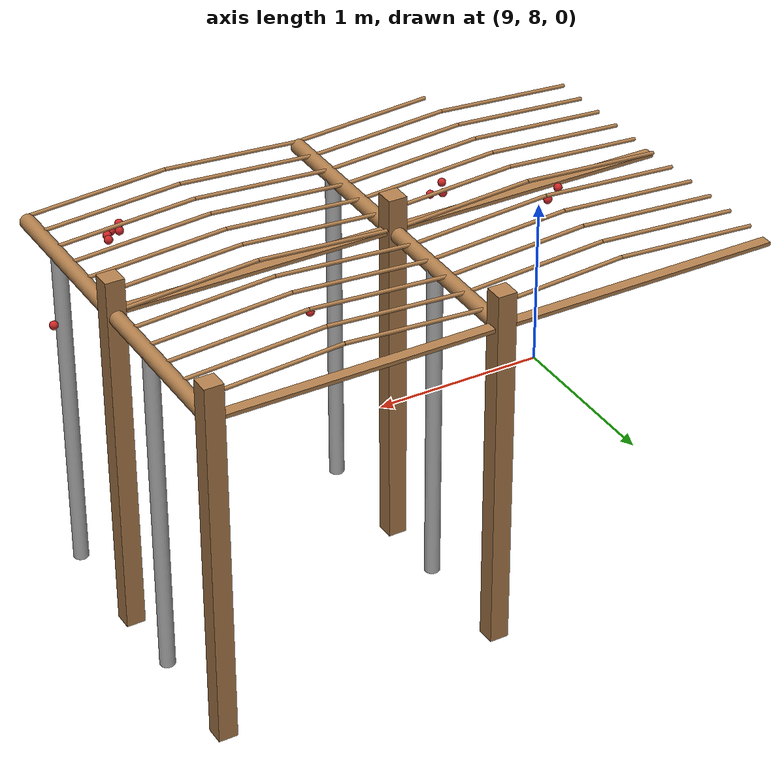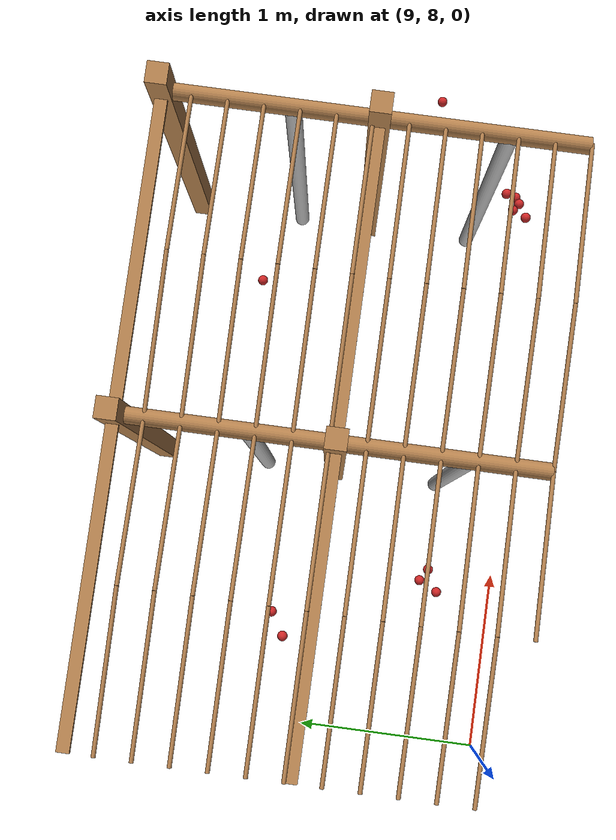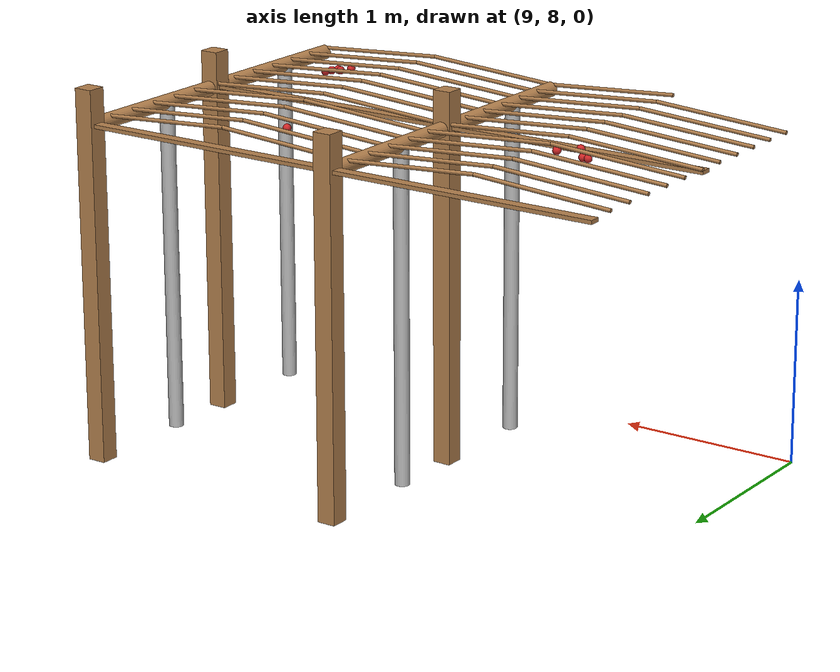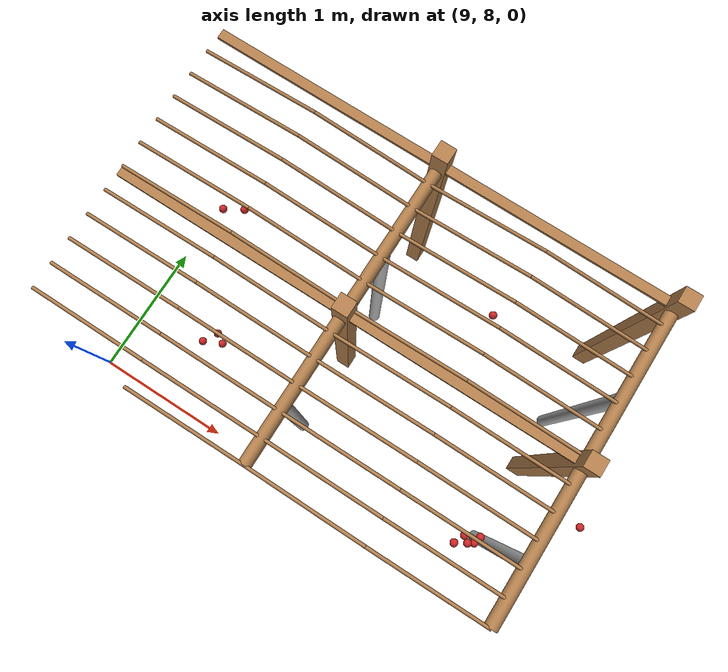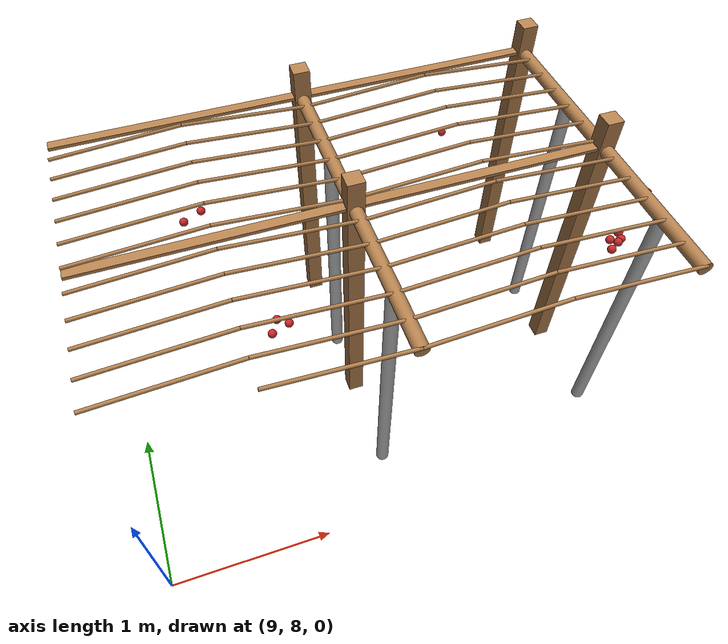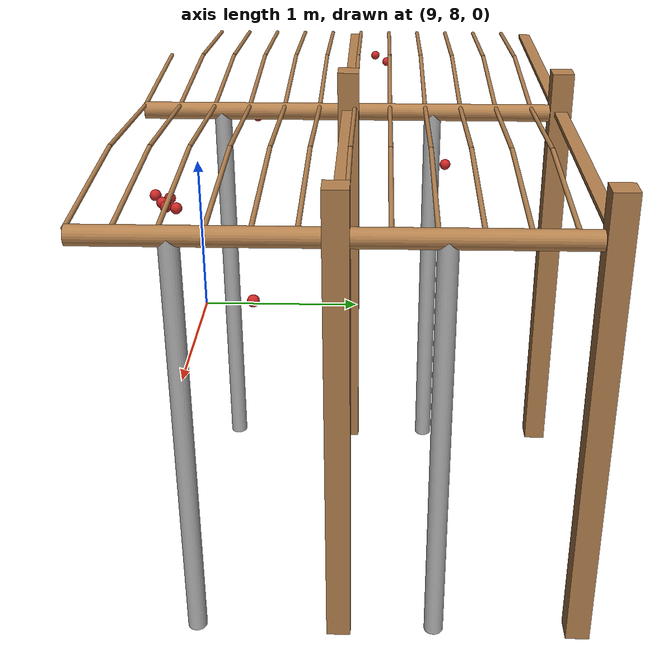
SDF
<sdf version="1.4">
 <model name="pergola">
  <include><name>post_86</name><pose>10.5 9.0 0 0 0 0</pose><uri>model://post</uri></include>
  <include><name>post_87</name><pose>10.5 10.0 0 0 0 0</pose><uri>model://post</uri></include>
  <include><name>post_97</name><pose>12.0 9.0 0 0 0 0</pose><uri>model://post</uri></include>
  <include><name>post_98</name><pose>12.0 10.0 0 0 0 0</pose><uri>model://post</uri></include>
  <link name="beam_75">
   <pose>9.75 9.0 1.81 0 0 0</pose>
   <collision name="collision"><geometry><box><size>1.5 0.06 0.02</size></box></geometry></collision>
   <visual name="visual">
    <geometry><box><size>1.5 0.06 0.02</size></box></geometry>
    <material><script><name>Gazebo/Wood</name></script></material>
   </visual>
   <inertial>
    <mass>5</mass>
    <inertia>
     <ixx>0.0016666666666666668</ixx>
     <ixy>0.0</ixy>
     <ixz>0.0</ixz>
     <iyy>0.9390000000000001</iyy>
     <iyz>0.0</iyz>
     <izz>0.9376666666666665</izz>
    </inertia>
   </inertial>
  </link>
  <link name="beam_76">
   <pose>9.75 10.0 1.81 0 0 0</pose>
   <collision name="collision"><geometry><box><size>1.5 0.06 0.02</size></box></geometry></collision>
   <visual name="visual">
    <geometry><box><size>1.5 0.06 0.02</size></box></geometry>
    <material><script><name>Gazebo/Wood</name></script></material>
   </visual>
   <inertial>
    <mass>5</mass>
    <inertia>
     <ixx>0.0016666666666666668</ixx>
     <ixy>0.0</ixy>
     <ixz>0.0</ixz>
     <iyy>0.9390000000000001</iyy>
     <iyz>0.0</iyz>
     <izz>0.9376666666666665</izz>
    </inertia>
   </inertial>
  </link>
  <link name="beam_86">
   <pose>11.25 9.0 1.81 0 0 0</pose>
   <collision name="collision"><geometry><box><size>1.5 0.06 0.02</size></box></geometry></collision>
   <visual name="visual">
    <geometry><box><size>1.5 0.06 0.02</size></box></geometry>
    <material><script><name>Gazebo/Wood</name></script></material>
   </visual>
   <inertial>
    <mass>5</mass>
    <inertia>
     <ixx>0.0016666666666666668</ixx>
     <ixy>0.0</ixy>
     <ixz>0.0</ixz>
     <iyy>0.9390000000000001</iyy>
     <iyz>0.0</iyz>
     <izz>0.9376666666666665</izz>
    </inertia>
   </inertial>
  </link>
  <link name="beam_87">
   <pose>11.25 10.0 1.81 0 0 0</pose>
   <collision name="collision"><geometry><box><size>1.5 0.06 0.02</size></box></geometry></collision>
   <visual name="visual">
    <geometry><box><size>1.5 0.06 0.02</size></box></geometry>
    <material><script><name>Gazebo/Wood</name></script></material>
   </visual>
   <inertial>
    <mass>5</mass>
    <inertia>
     <ixx>0.0016666666666666668</ixx>
     <ixy>0.0</ixy>
     <ixz>0.0</ixz>
     <iyy>0.9390000000000001</iyy>
     <iyz>0.0</iyz>
     <izz>0.9376666666666665</izz>
    </inertia>
   </inertial>
  </link>
  <include><name>tree_78</name><pose>10.5 8.4 0 0 0 0</pose><uri>model://tree_trunk</uri></include>
  <include><name>tree_79</name><pose>10.5 9.4 0 0 0 0</pose><uri>model://tree_trunk</uri></include>
  <include><name>tree_88</name><pose>12.0 8.4 0 0 0 0</pose><uri>model://tree_trunk</uri></include>
  <include><name>tree_89</name><pose>12.0 9.4 0 0 0 0</pose><uri>model://tree_trunk</uri></include>
  <link name="baseBranch_78">
   <pose>10.5 8.5 1.8 1.5707963267948966 0 0</pose>
   <collision name="collision">
    <geometry><cylinder><radius>0.04</radius><length>0.94</length></cylinder></geometry>
   </collision>
   <visual name="visual">
    <geometry><cylinder><radius>0.04</radius><length>0.94</length></cylinder></geometry>
    <material><script><name>Gazebo/WoodFloor</name></script></material>
   </visual>
   <inertial>
    <mass>10</mass>
    <inertia>
     <ixx>0.7403333333333334</ixx>
     <ixy>0.0</ixy>
     <ixz>0.0</ixz>
     <iyy>0.7403333333333334</iyy>
     <iyz>0.0</iyz>
     <izz>0.008</izz>
    </inertia>
   </inertial>
  </link>
  <link name="baseBranch_79">
   <pose>10.5 9.5 1.8 1.5707963267948966 0 0</pose>
   <collision name="collision">
    <geometry><cylinder><radius>0.04</radius><length>0.94</length></cylinder></geometry>
   </collision>
   <visual name="visual">
    <geometry><cylinder><radius>0.04</radius><length>0.94</length></cylinder></geometry>
    <material><script><name>Gazebo/WoodFloor</name></script></material>
   </visual>
   <inertial>
    <mass>10</mass>
    <inertia>
     <ixx>0.7403333333333334</ixx>
     <ixy>0.0</ixy>
     <ixz>0.0</ixz>
     <iyy>0.7403333333333334</iyy>
     <iyz>0.0</iyz>
     <izz>0.008</izz>
    </inertia>
   </inertial>
  </link>
  <link name="baseBranch_88">
   <pose>12.0 8.5 1.8 1.5707963267948966 0 0</pose>
   <collision name="collision">
    <geometry><cylinder><radius>0.04</radius><length>0.94</length></cylinder></geometry>
   </collision>
   <visual name="visual">
    <geometry><cylinder><radius>0.04</radius><length>0.94</length></cylinder></geometry>
    <material><script><name>Gazebo/WoodFloor</name></script></material>
   </visual>
   <inertial>
    <mass>10</mass>
    <inertia>
     <ixx>0.7403333333333334</ixx>
     <ixy>0.0</ixy>
     <ixz>0.0</ixz>
     <iyy>0.7403333333333334</iyy>
     <iyz>0.0</iyz>
     <izz>0.008</izz>
    </inertia>
   </inertial>
  </link>
  <link name="baseBranch_89">
   <pose>12.0 9.5 1.8 1.5707963267948966 0 0</pose>
   <collision name="collision">
    <geometry><cylinder><radius>0.04</radius><length>0.94</length></cylinder></geometry>
   </collision>
   <visual name="visual">
    <geometry><cylinder><radius>0.04</radius><length>0.94</length></cylinder></geometry>
    <material><script><name>Gazebo/WoodFloor</name></script></material>
   </visual>
   <inertial>
    <mass>10</mass>
    <inertia>
     <ixx>0.7403333333333334</ixx>
     <ixy>0.0</ixy>
     <ixz>0.0</ixz>
     <iyy>0.7403333333333334</iyy>
     <iyz>0.0</iyz>
     <izz>0.008</izz>
    </inertia>
   </inertial>
  </link>
  <link name="vine_817">
   <pose>10.125 8.03 1.85 0 -1.5042281630190728 0</pose>
   <collision name="collision">
    <geometry><cylinder><radius>0.01</radius><length>0.7516648189186453</length></cylinder></geometry>
   </collision>
   <visual name="visual">
    <geometry><cylinder><radius>0.01</radius><length>0.7516648189186453</length></cylinder></geometry>
    <material><script><name>Gazebo/WoodFloor</name></script></material>
   </visual>
   <inertial>
    <mass>5</mass>
    <inertia>
     <ixx>0.23554166666666657</ixx>
     <ixy>0.0</ixy>
     <ixz>0.0</ixz>
     <iyy>0.23554166666666657</iyy>
     <iyz>0.0</iyz>
     <izz>0.00025</izz>
    </inertia>
   </inertial>
  </link>
  <link name="vine_818">
   <pose>9.375 8.196666666666665 1.85 0 1.5042281630190728 0</pose>
   <collision name="collision">
    <geometry><cylinder><radius>0.01</radius><length>0.7516648189186453</length></cylinder></geometry>
   </collision>
   <visual name="visual">
    <geometry><cylinder><radius>0.01</radius><length>0.7516648189186453</length></cylinder></geometry>
    <material><script><name>Gazebo/WoodFloor</name></script></material>
   </visual>
   <inertial>
    <mass>5</mass>
    <inertia>
     <ixx>0.23554166666666657</ixx>
     <ixy>0.0</ixy>
     <ixz>0.0</ixz>
     <iyy>0.23554166666666657</iyy>
     <iyz>0.0</iyz>
     <izz>0.00025</izz>
    </inertia>
   </inertial>
  </link>
  <link name="vine_819">
   <pose>10.125 8.196666666666665 1.85 0 -1.5042281630190728 0</pose>
   <collision name="collision">
    <geometry><cylinder><radius>0.01</radius><length>0.7516648189186453</length></cylinder></geometry>
   </collision>
   <visual name="visual">
    <geometry><cylinder><radius>0.01</radius><length>0.7516648189186453</length></cylinder></geometry>
    <material><script><name>Gazebo/WoodFloor</name></script></material>
   </visual>
   <inertial>
    <mass>5</mass>
    <inertia>
     <ixx>0.23554166666666657</ixx>
     <ixy>0.0</ixy>
     <ixz>0.0</ixz>
     <iyy>0.23554166666666657</iyy>
     <iyz>0.0</iyz>
     <izz>0.00025</izz>
    </inertia>
   </inertial>
  </link>
  <link name="vine_820">
   <pose>9.375 8.363333333333332 1.85 0 1.5042281630190728 0</pose>
   <collision name="collision">
    <geometry><cylinder><radius>0.01</radius><length>0.7516648189186453</length></cylinder></geometry>
   </collision>
   <visual name="visual">
    <geometry><cylinder><radius>0.01</radius><length>0.7516648189186453</length></cylinder></geometry>
    <material><script><name>Gazebo/WoodFloor</name></script></material>
   </visual>
   <inertial>
    <mass>5</mass>
    <inertia>
     <ixx>0.23554166666666657</ixx>
     <ixy>0.0</ixy>
     <ixz>0.0</ixz>
     <iyy>0.23554166666666657</iyy>
     <iyz>0.0</iyz>
     <izz>0.00025</izz>
    </inertia>
   </inertial>
  </link>
  <link name="vine_821">
   <pose>10.125 8.363333333333332 1.85 0 -1.5042281630190728 0</pose>
   <collision name="collision">
    <geometry><cylinder><radius>0.01</radius><length>0.7516648189186453</length></cylinder></geometry>
   </collision>
   <visual name="visual">
    <geometry><cylinder><radius>0.01</radius><length>0.7516648189186453</length></cylinder></geometry>
    <material><script><name>Gazebo/WoodFloor</name></script></material>
   </visual>
   <inertial>
    <mass>5</mass>
    <inertia>
     <ixx>0.23554166666666657</ixx>
     <ixy>0.0</ixy>
     <ixz>0.0</ixz>
     <iyy>0.23554166666666657</iyy>
     <iyz>0.0</iyz>
     <izz>0.00025</izz>
    </inertia>
   </inertial>
  </link>
  <link name="vine_822">
   <pose>9.375 8.53 1.85 0 1.5042281630190728 0</pose>
   <collision name="collision">
    <geometry><cylinder><radius>0.01</radius><length>0.7516648189186453</length></cylinder></geometry>
   </collision>
   <visual name="visual">
    <geometry><cylinder><radius>0.01</radius><length>0.7516648189186453</length></cylinder></geometry>
    <material><script><name>Gazebo/WoodFloor</name></script></material>
   </visual>
   <inertial>
    <mass>5</mass>
    <inertia>
     <ixx>0.23554166666666657</ixx>
     <ixy>0.0</ixy>
     <ixz>0.0</ixz>
     <iyy>0.23554166666666657</iyy>
     <iyz>0.0</iyz>
     <izz>0.00025</izz>
    </inertia>
   </inertial>
  </link>
  <link name="vine_823">
   <pose>10.125 8.53 1.85 0 -1.5042281630190728 0</pose>
   <collision name="collision">
    <geometry><cylinder><radius>0.01</radius><length>0.7516648189186453</length></cylinder></geometry>
   </collision>
   <visual name="visual">
    <geometry><cylinder><radius>0.01</radius><length>0.7516648189186453</length></cylinder></geometry>
    <material><script><name>Gazebo/WoodFloor</name></script></material>
   </visual>
   <inertial>
    <mass>5</mass>
    <inertia>
     <ixx>0.23554166666666657</ixx>
     <ixy>0.0</ixy>
     <ixz>0.0</ixz>
     <iyy>0.23554166666666657</iyy>
     <iyz>0.0</iyz>
     <izz>0.00025</izz>
    </inertia>
   </inertial>
  </link>
  <link name="vine_824">
   <pose>9.375 8.696666666666665 1.85 0 1.5042281630190728 0</pose>
   <collision name="collision">
    <geometry><cylinder><radius>0.01</radius><length>0.7516648189186453</length></cylinder></geometry>
   </collision>
   <visual name="visual">
    <geometry><cylinder><radius>0.01</radius><length>0.7516648189186453</length></cylinder></geometry>
    <material><script><name>Gazebo/WoodFloor</name></script></material>
   </visual>
   <inertial>
    <mass>5</mass>
    <inertia>
     <ixx>0.23554166666666657</ixx>
     <ixy>0.0</ixy>
     <ixz>0.0</ixz>
     <iyy>0.23554166666666657</iyy>
     <iyz>0.0</iyz>
     <izz>0.00025</izz>
    </inertia>
   </inertial>
  </link>
  <link name="vine_825">
   <pose>10.125 8.696666666666665 1.85 0 -1.5042281630190728 0</pose>
   <collision name="collision">
    <geometry><cylinder><radius>0.01</radius><length>0.7516648189186453</length></cylinder></geometry>
   </collision>
   <visual name="visual">
    <geometry><cylinder><radius>0.01</radius><length>0.7516648189186453</length></cylinder></geometry>
    <material><script><name>Gazebo/WoodFloor</name></script></material>
   </visual>
   <inertial>
    <mass>5</mass>
    <inertia>
     <ixx>0.23554166666666657</ixx>
     <ixy>0.0</ixy>
     <ixz>0.0</ixz>
     <iyy>0.23554166666666657</iyy>
     <iyz>0.0</iyz>
     <izz>0.00025</izz>
    </inertia>
   </inertial>
  </link>
  <link name="vine_826">
   <pose>9.375 8.863333333333332 1.85 0 1.5042281630190728 0</pose>
   <collision name="collision">
    <geometry><cylinder><radius>0.01</radius><length>0.7516648189186453</length></cylinder></geometry>
   </collision>
   <visual name="visual">
    <geometry><cylinder><radius>0.01</radius><length>0.7516648189186453</length></cylinder></geometry>
    <material><script><name>Gazebo/WoodFloor</name></script></material>
   </visual>
   <inertial>
    <mass>5</mass>
    <inertia>
     <ixx>0.23554166666666657</ixx>
     <ixy>0.0</ixy>
     <ixz>0.0</ixz>
     <iyy>0.23554166666666657</iyy>
     <iyz>0.0</iyz>
     <izz>0.00025</izz>
    </inertia>
   </inertial>
  </link>
  <link name="vine_827">
   <pose>10.125 8.863333333333332 1.85 0 -1.5042281630190728 0</pose>
   <collision name="collision">
    <geometry><cylinder><radius>0.01</radius><length>0.7516648189186453</length></cylinder></geometry>
   </collision>
   <visual name="visual">
    <geometry><cylinder><radius>0.01</radius><length>0.7516648189186453</length></cylinder></geometry>
    <material><script><name>Gazebo/WoodFloor</name></script></material>
   </visual>
   <inertial>
    <mass>5</mass>
    <inertia>
     <ixx>0.23554166666666657</ixx>
     <ixy>0.0</ixy>
     <ixz>0.0</ixz>
     <iyy>0.23554166666666657</iyy>
     <iyz>0.0</iyz>
     <izz>0.00025</izz>
    </inertia>
   </inertial>
  </link>
  <link name="vine_828">
   <pose>9.375 9.03 1.85 0 1.5042281630190728 0</pose>
   <collision name="collision">
    <geometry><cylinder><radius>0.01</radius><length>0.7516648189186453</length></cylinder></geometry>
   </collision>
   <visual name="visual">
    <geometry><cylinder><radius>0.01</radius><length>0.7516648189186453</length></cylinder></geometry>
    <material><script><name>Gazebo/WoodFloor</name></script></material>
   </visual>
   <inertial>
    <mass>5</mass>
    <inertia>
     <ixx>0.23554166666666657</ixx>
     <ixy>0.0</ixy>
     <ixz>0.0</ixz>
     <iyy>0.23554166666666657</iyy>
     <iyz>0.0</iyz>
     <izz>0.00025</izz>
    </inertia>
   </inertial>
  </link>
  <link name="vine_829">
   <pose>10.125 9.03 1.85 0 -1.5042281630190728 0</pose>
   <collision name="collision">
    <geometry><cylinder><radius>0.01</radius><length>0.7516648189186453</length></cylinder></geometry>
   </collision>
   <visual name="visual">
    <geometry><cylinder><radius>0.01</radius><length>0.7516648189186453</length></cylinder></geometry>
    <material><script><name>Gazebo/WoodFloor</name></script></material>
   </visual>
   <inertial>
    <mass>5</mass>
    <inertia>
     <ixx>0.23554166666666657</ixx>
     <ixy>0.0</ixy>
     <ixz>0.0</ixz>
     <iyy>0.23554166666666657</iyy>
     <iyz>0.0</iyz>
     <izz>0.00025</izz>
    </inertia>
   </inertial>
  </link>
  <link name="vine_830">
   <pose>9.375 9.196666666666665 1.85 0 1.5042281630190728 0</pose>
   <collision name="collision">
    <geometry><cylinder><radius>0.01</radius><length>0.7516648189186453</length></cylinder></geometry>
   </collision>
   <visual name="visual">
    <geometry><cylinder><radius>0.01</radius><length>0.7516648189186453</length></cylinder></geometry>
    <material><script><name>Gazebo/WoodFloor</name></script></material>
   </visual>
   <inertial>
    <mass>5</mass>
    <inertia>
     <ixx>0.23554166666666657</ixx>
     <ixy>0.0</ixy>
     <ixz>0.0</ixz>
     <iyy>0.23554166666666657</iyy>
     <iyz>0.0</iyz>
     <izz>0.00025</izz>
    </inertia>
   </inertial>
  </link>
  <link name="vine_831">
   <pose>10.125 9.196666666666665 1.85 0 -1.5042281630190728 0</pose>
   <collision name="collision">
    <geometry><cylinder><radius>0.01</radius><length>0.7516648189186453</length></cylinder></geometry>
   </collision>
   <visual name="visual">
    <geometry><cylinder><radius>0.01</radius><length>0.7516648189186453</length></cylinder></geometry>
    <material><script><name>Gazebo/WoodFloor</name></script></material>
   </visual>
   <inertial>
    <mass>5</mass>
    <inertia>
     <ixx>0.23554166666666657</ixx>
     <ixy>0.0</ixy>
     <ixz>0.0</ixz>
     <iyy>0.23554166666666657</iyy>
     <iyz>0.0</iyz>
     <izz>0.00025</izz>
    </inertia>
   </inertial>
  </link>
  <link name="vine_832">
   <pose>9.375 9.363333333333332 1.85 0 1.5042281630190728 0</pose>
   <collision name="collision">
    <geometry><cylinder><radius>0.01</radius><length>0.7516648189186453</length></cylinder></geometry>
   </collision>
   <visual name="visual">
    <geometry><cylinder><radius>0.01</radius><length>0.7516648189186453</length></cylinder></geometry>
    <material><script><name>Gazebo/WoodFloor</name></script></material>
   </visual>
   <inertial>
    <mass>5</mass>
    <inertia>
     <ixx>0.23554166666666657</ixx>
     <ixy>0.0</ixy>
     <ixz>0.0</ixz>
     <iyy>0.23554166666666657</iyy>
     <iyz>0.0</iyz>
     <izz>0.00025</izz>
    </inertia>
   </inertial>
  </link>
  <link name="vine_833">
   <pose>10.125 9.363333333333332 1.85 0 -1.5042281630190728 0</pose>
   <collision name="collision">
    <geometry><cylinder><radius>0.01</radius><length>0.7516648189186453</length></cylinder></geometry>
   </collision>
   <visual name="visual">
    <geometry><cylinder><radius>0.01</radius><length>0.7516648189186453</length></cylinder></geometry>
    <material><script><name>Gazebo/WoodFloor</name></script></material>
   </visual>
   <inertial>
    <mass>5</mass>
    <inertia>
     <ixx>0.23554166666666657</ixx>
     <ixy>0.0</ixy>
     <ixz>0.0</ixz>
     <iyy>0.23554166666666657</iyy>
     <iyz>0.0</iyz>
     <izz>0.00025</izz>
    </inertia>
   </inertial>
  </link>
  <link name="vine_834">
   <pose>9.375 9.53 1.85 0 1.5042281630190728 0</pose>
   <collision name="collision">
    <geometry><cylinder><radius>0.01</radius><length>0.7516648189186453</length></cylinder></geometry>
   </collision>
   <visual name="visual">
    <geometry><cylinder><radius>0.01</radius><length>0.7516648189186453</length></cylinder></geometry>
    <material><script><name>Gazebo/WoodFloor</name></script></material>
   </visual>
   <inertial>
    <mass>5</mass>
    <inertia>
     <ixx>0.23554166666666657</ixx>
     <ixy>0.0</ixy>
     <ixz>0.0</ixz>
     <iyy>0.23554166666666657</iyy>
     <iyz>0.0</iyz>
     <izz>0.00025</izz>
    </inertia>
   </inertial>
  </link>
  <link name="vine_835">
   <pose>10.125 9.53 1.85 0 -1.5042281630190728 0</pose>
   <collision name="collision">
    <geometry><cylinder><radius>0.01</radius><length>0.7516648189186453</length></cylinder></geometry>
   </collision>
   <visual name="visual">
    <geometry><cylinder><radius>0.01</radius><length>0.7516648189186453</length></cylinder></geometry>
    <material><script><name>Gazebo/WoodFloor</name></script></material>
   </visual>
   <inertial>
    <mass>5</mass>
    <inertia>
     <ixx>0.23554166666666657</ixx>
     <ixy>0.0</ixy>
     <ixz>0.0</ixz>
     <iyy>0.23554166666666657</iyy>
     <iyz>0.0</iyz>
     <izz>0.00025</izz>
    </inertia>
   </inertial>
  </link>
  <link name="vine_836">
   <pose>9.375 9.696666666666665 1.85 0 1.5042281630190728 0</pose>
   <collision name="collision">
    <geometry><cylinder><radius>0.01</radius><length>0.7516648189186453</length></cylinder></geometry>
   </collision>
   <visual name="visual">
    <geometry><cylinder><radius>0.01</radius><length>0.7516648189186453</length></cylinder></geometry>
    <material><script><name>Gazebo/WoodFloor</name></script></material>
   </visual>
   <inertial>
    <mass>5</mass>
    <inertia>
     <ixx>0.23554166666666657</ixx>
     <ixy>0.0</ixy>
     <ixz>0.0</ixz>
     <iyy>0.23554166666666657</iyy>
     <iyz>0.0</iyz>
     <izz>0.00025</izz>
    </inertia>
   </inertial>
  </link>
  <link name="vine_837">
   <pose>10.125 9.696666666666665 1.85 0 -1.5042281630190728 0</pose>
   <collision name="collision">
    <geometry><cylinder><radius>0.01</radius><length>0.7516648189186453</length></cylinder></geometry>
   </collision>
   <visual name="visual">
    <geometry><cylinder><radius>0.01</radius><length>0.7516648189186453</length></cylinder></geometry>
    <material><script><name>Gazebo/WoodFloor</name></script></material>
   </visual>
   <inertial>
    <mass>5</mass>
    <inertia>
     <ixx>0.23554166666666657</ixx>
     <ixy>0.0</ixy>
     <ixz>0.0</ixz>
     <iyy>0.23554166666666657</iyy>
     <iyz>0.0</iyz>
     <izz>0.00025</izz>
    </inertia>
   </inertial>
  </link>
  <link name="vine_838">
   <pose>9.375 9.863333333333332 1.85 0 1.5042281630190728 0</pose>
   <collision name="collision">
    <geometry><cylinder><radius>0.01</radius><length>0.7516648189186453</length></cylinder></geometry>
   </collision>
   <visual name="visual">
    <geometry><cylinder><radius>0.01</radius><length>0.7516648189186453</length></cylinder></geometry>
    <material><script><name>Gazebo/WoodFloor</name></script></material>
   </visual>
   <inertial>
    <mass>5</mass>
    <inertia>
     <ixx>0.23554166666666657</ixx>
     <ixy>0.0</ixy>
     <ixz>0.0</ixz>
     <iyy>0.23554166666666657</iyy>
     <iyz>0.0</iyz>
     <izz>0.00025</izz>
    </inertia>
   </inertial>
  </link>
  <link name="vine_839">
   <pose>10.125 9.863333333333332 1.85 0 -1.5042281630190728 0</pose>
   <collision name="collision">
    <geometry><cylinder><radius>0.01</radius><length>0.7516648189186453</length></cylinder></geometry>
   </collision>
   <visual name="visual">
    <geometry><cylinder><radius>0.01</radius><length>0.7516648189186453</length></cylinder></geometry>
    <material><script><name>Gazebo/WoodFloor</name></script></material>
   </visual>
   <inertial>
    <mass>5</mass>
    <inertia>
     <ixx>0.23554166666666657</ixx>
     <ixy>0.0</ixy>
     <ixz>0.0</ixz>
     <iyy>0.23554166666666657</iyy>
     <iyz>0.0</iyz>
     <izz>0.00025</izz>
    </inertia>
   </inertial>
  </link>
  <link name="vine_936">
   <pose>10.875 8.03 1.85 0 1.5042281630190728 0</pose>
   <collision name="collision">
    <geometry><cylinder><radius>0.01</radius><length>0.7516648189186453</length></cylinder></geometry>
   </collision>
   <visual name="visual">
    <geometry><cylinder><radius>0.01</radius><length>0.7516648189186453</length></cylinder></geometry>
    <material><script><name>Gazebo/WoodFloor</name></script></material>
   </visual>
   <inertial>
    <mass>5</mass>
    <inertia>
     <ixx>0.23554166666666657</ixx>
     <ixy>0.0</ixy>
     <ixz>0.0</ixz>
     <iyy>0.23554166666666657</iyy>
     <iyz>0.0</iyz>
     <izz>0.00025</izz>
    </inertia>
   </inertial>
  </link>
  <link name="vine_937">
   <pose>11.625 8.03 1.85 0 -1.5042281630190728 0</pose>
   <collision name="collision">
    <geometry><cylinder><radius>0.01</radius><length>0.7516648189186453</length></cylinder></geometry>
   </collision>
   <visual name="visual">
    <geometry><cylinder><radius>0.01</radius><length>0.7516648189186453</length></cylinder></geometry>
    <material><script><name>Gazebo/WoodFloor</name></script></material>
   </visual>
   <inertial>
    <mass>5</mass>
    <inertia>
     <ixx>0.23554166666666657</ixx>
     <ixy>0.0</ixy>
     <ixz>0.0</ixz>
     <iyy>0.23554166666666657</iyy>
     <iyz>0.0</iyz>
     <izz>0.00025</izz>
    </inertia>
   </inertial>
  </link>
  <link name="vine_938">
   <pose>10.875 8.196666666666665 1.85 0 1.5042281630190728 0</pose>
   <collision name="collision">
    <geometry><cylinder><radius>0.01</radius><length>0.7516648189186453</length></cylinder></geometry>
   </collision>
   <visual name="visual">
    <geometry><cylinder><radius>0.01</radius><length>0.7516648189186453</length></cylinder></geometry>
    <material><script><name>Gazebo/WoodFloor</name></script></material>
   </visual>
   <inertial>
    <mass>5</mass>
    <inertia>
     <ixx>0.23554166666666657</ixx>
     <ixy>0.0</ixy>
     <ixz>0.0</ixz>
     <iyy>0.23554166666666657</iyy>
     <iyz>0.0</iyz>
     <izz>0.00025</izz>
    </inertia>
   </inertial>
  </link>
  <link name="vine_939">
   <pose>11.625 8.196666666666665 1.85 0 -1.5042281630190728 0</pose>
   <collision name="collision">
    <geometry><cylinder><radius>0.01</radius><length>0.7516648189186453</length></cylinder></geometry>
   </collision>
   <visual name="visual">
    <geometry><cylinder><radius>0.01</radius><length>0.7516648189186453</length></cylinder></geometry>
    <material><script><name>Gazebo/WoodFloor</name></script></material>
   </visual>
   <inertial>
    <mass>5</mass>
    <inertia>
     <ixx>0.23554166666666657</ixx>
     <ixy>0.0</ixy>
     <ixz>0.0</ixz>
     <iyy>0.23554166666666657</iyy>
     <iyz>0.0</iyz>
     <izz>0.00025</izz>
    </inertia>
   </inertial>
  </link>
  <link name="vine_940">
   <pose>10.875 8.363333333333332 1.85 0 1.5042281630190728 0</pose>
   <collision name="collision">
    <geometry><cylinder><radius>0.01</radius><length>0.7516648189186453</length></cylinder></geometry>
   </collision>
   <visual name="visual">
    <geometry><cylinder><radius>0.01</radius><length>0.7516648189186453</length></cylinder></geometry>
    <material><script><name>Gazebo/WoodFloor</name></script></material>
   </visual>
   <inertial>
    <mass>5</mass>
    <inertia>
     <ixx>0.23554166666666657</ixx>
     <ixy>0.0</ixy>
     <ixz>0.0</ixz>
     <iyy>0.23554166666666657</iyy>
     <iyz>0.0</iyz>
     <izz>0.00025</izz>
    </inertia>
   </inertial>
  </link>
  <link name="vine_941">
   <pose>11.625 8.363333333333332 1.85 0 -1.5042281630190728 0</pose>
   <collision name="collision">
    <geometry><cylinder><radius>0.01</radius><length>0.7516648189186453</length></cylinder></geometry>
   </collision>
   <visual name="visual">
    <geometry><cylinder><radius>0.01</radius><length>0.7516648189186453</length></cylinder></geometry>
    <material><script><name>Gazebo/WoodFloor</name></script></material>
   </visual>
   <inertial>
    <mass>5</mass>
    <inertia>
     <ixx>0.23554166666666657</ixx>
     <ixy>0.0</ixy>
     <ixz>0.0</ixz>
     <iyy>0.23554166666666657</iyy>
     <iyz>0.0</iyz>
     <izz>0.00025</izz>
    </inertia>
   </inertial>
  </link>
  <link name="vine_942">
   <pose>10.875 8.53 1.85 0 1.5042281630190728 0</pose>
   <collision name="collision">
    <geometry><cylinder><radius>0.01</radius><length>0.7516648189186453</length></cylinder></geometry>
   </collision>
   <visual name="visual">
    <geometry><cylinder><radius>0.01</radius><length>0.7516648189186453</length></cylinder></geometry>
    <material><script><name>Gazebo/WoodFloor</name></script></material>
   </visual>
   <inertial>
    <mass>5</mass>
    <inertia>
     <ixx>0.23554166666666657</ixx>
     <ixy>0.0</ixy>
     <ixz>0.0</ixz>
     <iyy>0.23554166666666657</iyy>
     <iyz>0.0</iyz>
     <izz>0.00025</izz>
    </inertia>
   </inertial>
  </link>
  <link name="vine_943">
   <pose>11.625 8.53 1.85 0 -1.5042281630190728 0</pose>
   <collision name="collision">
    <geometry><cylinder><radius>0.01</radius><length>0.7516648189186453</length></cylinder></geometry>
   </collision>
   <visual name="visual">
    <geometry><cylinder><radius>0.01</radius><length>0.7516648189186453</length></cylinder></geometry>
    <material><script><name>Gazebo/WoodFloor</name></script></material>
   </visual>
   <inertial>
    <mass>5</mass>
    <inertia>
     <ixx>0.23554166666666657</ixx>
     <ixy>0.0</ixy>
     <ixz>0.0</ixz>
     <iyy>0.23554166666666657</iyy>
     <iyz>0.0</iyz>
     <izz>0.00025</izz>
    </inertia>
   </inertial>
  </link>
  <link name="vine_944">
   <pose>10.875 8.696666666666665 1.85 0 1.5042281630190728 0</pose>
   <collision name="collision">
    <geometry><cylinder><radius>0.01</radius><length>0.7516648189186453</length></cylinder></geometry>
   </collision>
   <visual name="visual">
    <geometry><cylinder><radius>0.01</radius><length>0.7516648189186453</length></cylinder></geometry>
    <material><script><name>Gazebo/WoodFloor</name></script></material>
   </visual>
   <inertial>
    <mass>5</mass>
    <inertia>
     <ixx>0.23554166666666657</ixx>
     <ixy>0.0</ixy>
     <ixz>0.0</ixz>
     <iyy>0.23554166666666657</iyy>
     <iyz>0.0</iyz>
     <izz>0.00025</izz>
    </inertia>
   </inertial>
  </link>
  <link name="vine_945">
   <pose>11.625 8.696666666666665 1.85 0 -1.5042281630190728 0</pose>
   <collision name="collision">
    <geometry><cylinder><radius>0.01</radius><length>0.7516648189186453</length></cylinder></geometry>
   </collision>
   <visual name="visual">
    <geometry><cylinder><radius>0.01</radius><length>0.7516648189186453</length></cylinder></geometry>
    <material><script><name>Gazebo/WoodFloor</name></script></material>
   </visual>
   <inertial>
    <mass>5</mass>
    <inertia>
     <ixx>0.23554166666666657</ixx>
     <ixy>0.0</ixy>
     <ixz>0.0</ixz>
     <iyy>0.23554166666666657</iyy>
     <iyz>0.0</iyz>
     <izz>0.00025</izz>
    </inertia>
   </inertial>
  </link>
  <link name="vine_946">
   <pose>10.875 8.863333333333332 1.85 0 1.5042281630190728 0</pose>
   <collision name="collision">
    <geometry><cylinder><radius>0.01</radius><length>0.7516648189186453</length></cylinder></geometry>
   </collision>
   <visual name="visual">
    <geometry><cylinder><radius>0.01</radius><length>0.7516648189186453</length></cylinder></geometry>
    <material><script><name>Gazebo/WoodFloor</name></script></material>
   </visual>
   <inertial>
    <mass>5</mass>
    <inertia>
     <ixx>0.23554166666666657</ixx>
     <ixy>0.0</ixy>
     <ixz>0.0</ixz>
     <iyy>0.23554166666666657</iyy>
     <iyz>0.0</iyz>
     <izz>0.00025</izz>
    </inertia>
   </inertial>
  </link>
  <link name="vine_947">
   <pose>11.625 8.863333333333332 1.85 0 -1.5042281630190728 0</pose>
   <collision name="collision">
    <geometry><cylinder><radius>0.01</radius><length>0.7516648189186453</length></cylinder></geometry>
   </collision>
   <visual name="visual">
    <geometry><cylinder><radius>0.01</radius><length>0.7516648189186453</length></cylinder></geometry>
    <material><script><name>Gazebo/WoodFloor</name></script></material>
   </visual>
   <inertial>
    <mass>5</mass>
    <inertia>
     <ixx>0.23554166666666657</ixx>
     <ixy>0.0</ixy>
     <ixz>0.0</ixz>
     <iyy>0.23554166666666657</iyy>
     <iyz>0.0</iyz>
     <izz>0.00025</izz>
    </inertia>
   </inertial>
  </link>
  <link name="vine_948">
   <pose>10.875 9.03 1.85 0 1.5042281630190728 0</pose>
   <collision name="collision">
    <geometry><cylinder><radius>0.01</radius><length>0.7516648189186453</length></cylinder></geometry>
   </collision>
   <visual name="visual">
    <geometry><cylinder><radius>0.01</radius><length>0.7516648189186453</length></cylinder></geometry>
    <material><script><name>Gazebo/WoodFloor</name></script></material>
   </visual>
   <inertial>
    <mass>5</mass>
    <inertia>
     <ixx>0.23554166666666657</ixx>
     <ixy>0.0</ixy>
     <ixz>0.0</ixz>
     <iyy>0.23554166666666657</iyy>
     <iyz>0.0</iyz>
     <izz>0.00025</izz>
    </inertia>
   </inertial>
  </link>
  <link name="vine_949">
   <pose>11.625 9.03 1.85 0 -1.5042281630190728 0</pose>
   <collision name="collision">
    <geometry><cylinder><radius>0.01</radius><length>0.7516648189186453</length></cylinder></geometry>
   </collision>
   <visual name="visual">
    <geometry><cylinder><radius>0.01</radius><length>0.7516648189186453</length></cylinder></geometry>
    <material><script><name>Gazebo/WoodFloor</name></script></material>
   </visual>
   <inertial>
    <mass>5</mass>
    <inertia>
     <ixx>0.23554166666666657</ixx>
     <ixy>0.0</ixy>
     <ixz>0.0</ixz>
     <iyy>0.23554166666666657</iyy>
     <iyz>0.0</iyz>
     <izz>0.00025</izz>
    </inertia>
   </inertial>
  </link>
  <link name="vine_950">
   <pose>10.875 9.196666666666665 1.85 0 1.5042281630190728 0</pose>
   <collision name="collision">
    <geometry><cylinder><radius>0.01</radius><length>0.7516648189186453</length></cylinder></geometry>
   </collision>
   <visual name="visual">
    <geometry><cylinder><radius>0.01</radius><length>0.7516648189186453</length></cylinder></geometry>
    <material><script><name>Gazebo/WoodFloor</name></script></material>
   </visual>
   <inertial>
    <mass>5</mass>
    <inertia>
     <ixx>0.23554166666666657</ixx>
     <ixy>0.0</ixy>
     <ixz>0.0</ixz>
     <iyy>0.23554166666666657</iyy>
     <iyz>0.0</iyz>
     <izz>0.00025</izz>
    </inertia>
   </inertial>
  </link>
  <link name="vine_951">
   <pose>11.625 9.196666666666665 1.85 0 -1.5042281630190728 0</pose>
   <collision name="collision">
    <geometry><cylinder><radius>0.01</radius><length>0.7516648189186453</length></cylinder></geometry>
   </collision>
   <visual name="visual">
    <geometry><cylinder><radius>0.01</radius><length>0.7516648189186453</length></cylinder></geometry>
    <material><script><name>Gazebo/WoodFloor</name></script></material>
   </visual>
   <inertial>
    <mass>5</mass>
    <inertia>
     <ixx>0.23554166666666657</ixx>
     <ixy>0.0</ixy>
     <ixz>0.0</ixz>
     <iyy>0.23554166666666657</iyy>
     <iyz>0.0</iyz>
     <izz>0.00025</izz>
    </inertia>
   </inertial>
  </link>
  <link name="vine_952">
   <pose>10.875 9.363333333333332 1.85 0 1.5042281630190728 0</pose>
   <collision name="collision">
    <geometry><cylinder><radius>0.01</radius><length>0.7516648189186453</length></cylinder></geometry>
   </collision>
   <visual name="visual">
    <geometry><cylinder><radius>0.01</radius><length>0.7516648189186453</length></cylinder></geometry>
    <material><script><name>Gazebo/WoodFloor</name></script></material>
   </visual>
   <inertial>
    <mass>5</mass>
    <inertia>
     <ixx>0.23554166666666657</ixx>
     <ixy>0.0</ixy>
     <ixz>0.0</ixz>
     <iyy>0.23554166666666657</iyy>
     <iyz>0.0</iyz>
     <izz>0.00025</izz>
    </inertia>
   </inertial>
  </link>
  <link name="vine_953">
   <pose>11.625 9.363333333333332 1.85 0 -1.5042281630190728 0</pose>
   <collision name="collision">
    <geometry><cylinder><radius>0.01</radius><length>0.7516648189186453</length></cylinder></geometry>
   </collision>
   <visual name="visual">
    <geometry><cylinder><radius>0.01</radius><length>0.7516648189186453</length></cylinder></geometry>
    <material><script><name>Gazebo/WoodFloor</name></script></material>
   </visual>
   <inertial>
    <mass>5</mass>
    <inertia>
     <ixx>0.23554166666666657</ixx>
     <ixy>0.0</ixy>
     <ixz>0.0</ixz>
     <iyy>0.23554166666666657</iyy>
     <iyz>0.0</iyz>
     <izz>0.00025</izz>
    </inertia>
   </inertial>
  </link>
  <link name="vine_954">
   <pose>10.875 9.53 1.85 0 1.5042281630190728 0</pose>
   <collision name="collision">
    <geometry><cylinder><radius>0.01</radius><length>0.7516648189186453</length></cylinder></geometry>
   </collision>
   <visual name="visual">
    <geometry><cylinder><radius>0.01</radius><length>0.7516648189186453</length></cylinder></geometry>
    <material><script><name>Gazebo/WoodFloor</name></script></material>
   </visual>
   <inertial>
    <mass>5</mass>
    <inertia>
     <ixx>0.23554166666666657</ixx>
     <ixy>0.0</ixy>
     <ixz>0.0</ixz>
     <iyy>0.23554166666666657</iyy>
     <iyz>0.0</iyz>
     <izz>0.00025</izz>
    </inertia>
   </inertial>
  </link>
  <link name="vine_955">
   <pose>11.625 9.53 1.85 0 -1.5042281630190728 0</pose>
   <collision name="collision">
    <geometry><cylinder><radius>0.01</radius><length>0.7516648189186453</length></cylinder></geometry>
   </collision>
   <visual name="visual">
    <geometry><cylinder><radius>0.01</radius><length>0.7516648189186453</length></cylinder></geometry>
    <material><script><name>Gazebo/WoodFloor</name></script></material>
   </visual>
   <inertial>
    <mass>5</mass>
    <inertia>
     <ixx>0.23554166666666657</ixx>
     <ixy>0.0</ixy>
     <ixz>0.0</ixz>
     <iyy>0.23554166666666657</iyy>
     <iyz>0.0</iyz>
     <izz>0.00025</izz>
    </inertia>
   </inertial>
  </link>
  <link name="vine_956">
   <pose>10.875 9.696666666666665 1.85 0 1.5042281630190728 0</pose>
   <collision name="collision">
    <geometry><cylinder><radius>0.01</radius><length>0.7516648189186453</length></cylinder></geometry>
   </collision>
   <visual name="visual">
    <geometry><cylinder><radius>0.01</radius><length>0.7516648189186453</length></cylinder></geometry>
    <material><script><name>Gazebo/WoodFloor</name></script></material>
   </visual>
   <inertial>
    <mass>5</mass>
    <inertia>
     <ixx>0.23554166666666657</ixx>
     <ixy>0.0</ixy>
     <ixz>0.0</ixz>
     <iyy>0.23554166666666657</iyy>
     <iyz>0.0</iyz>
     <izz>0.00025</izz>
    </inertia>
   </inertial>
  </link>
  <link name="vine_957">
   <pose>11.625 9.696666666666665 1.85 0 -1.5042281630190728 0</pose>
   <collision name="collision">
    <geometry><cylinder><radius>0.01</radius><length>0.7516648189186453</length></cylinder></geometry>
   </collision>
   <visual name="visual">
    <geometry><cylinder><radius>0.01</radius><length>0.7516648189186453</length></cylinder></geometry>
    <material><script><name>Gazebo/WoodFloor</name></script></material>
   </visual>
   <inertial>
    <mass>5</mass>
    <inertia>
     <ixx>0.23554166666666657</ixx>
     <ixy>0.0</ixy>
     <ixz>0.0</ixz>
     <iyy>0.23554166666666657</iyy>
     <iyz>0.0</iyz>
     <izz>0.00025</izz>
    </inertia>
   </inertial>
  </link>
  <link name="vine_958">
   <pose>10.875 9.863333333333332 1.85 0 1.5042281630190728 0</pose>
   <collision name="collision">
    <geometry><cylinder><radius>0.01</radius><length>0.7516648189186453</length></cylinder></geometry>
   </collision>
   <visual name="visual">
    <geometry><cylinder><radius>0.01</radius><length>0.7516648189186453</length></cylinder></geometry>
    <material><script><name>Gazebo/WoodFloor</name></script></material>
   </visual>
   <inertial>
    <mass>5</mass>
    <inertia>
     <ixx>0.23554166666666657</ixx>
     <ixy>0.0</ixy>
     <ixz>0.0</ixz>
     <iyy>0.23554166666666657</iyy>
     <iyz>0.0</iyz>
     <izz>0.00025</izz>
    </inertia>
   </inertial>
  </link>
  <link name="vine_959">
   <pose>11.625 9.863333333333332 1.85 0 -1.5042281630190728 0</pose>
   <collision name="collision">
    <geometry><cylinder><radius>0.01</radius><length>0.7516648189186453</length></cylinder></geometry>
   </collision>
   <visual name="visual">
    <geometry><cylinder><radius>0.01</radius><length>0.7516648189186453</length></cylinder></geometry>
    <material><script><name>Gazebo/WoodFloor</name></script></material>
   </visual>
   <inertial>
    <mass>5</mass>
    <inertia>
     <ixx>0.23554166666666657</ixx>
     <ixy>0.0</ixy>
     <ixz>0.0</ixz>
     <iyy>0.23554166666666657</iyy>
     <iyz>0.0</iyz>
     <izz>0.00025</izz>
    </inertia>
   </inertial>
  </link>
  <link name="fruit_5">
   <pose>11.626878973961333 8.287840852171437 1.807916560236619 0 0 0</pose>
   <collision name="fruit_collision_5"><geometry><sphere><radius>0.022</radius></sphere></geometry></collision>
   <visual name="visual">
    <geometry><sphere><radius>0.022</radius></sphere></geometry>
    <material><script><name>Gazebo/Red</name></script></material>
   </visual>
   <inertial>
    <mass>0.05</mass>
    <inertia>
     <ixx>9.679999999999999e-06</ixx>
     <ixy>0.0</ixy>
     <ixz>0.0</ixz>
     <iyy>9.679999999999999e-06</iyy>
     <iyz>0.0</iyz>
     <izz>9.679999999999999e-06</izz>
    </inertia>
   </inertial>
   <sensor name="fruit_contact_5" type="contact">
    <contact><collision>fruit_collision_5</collision></contact>
   </sensor>
  </link>
  <link name="fruit_11">
   <pose>12.180974353011225 8.719636635171346 1.6365207503713148 0 0 0</pose>
   <collision name="fruit_collision_11"><geometry><sphere><radius>0.022</radius></sphere></geometry></collision>
   <visual name="visual">
    <geometry><sphere><radius>0.022</radius></sphere></geometry>
    <material><script><name>Gazebo/Red</name></script></material>
   </visual>
   <inertial>
    <mass>0.05</mass>
    <inertia>
     <ixx>9.679999999999999e-06</ixx>
     <ixy>0.0</ixy>
     <ixz>0.0</ixz>
     <iyy>9.679999999999999e-06</iyy>
     <iyz>0.0</iyz>
     <izz>9.679999999999999e-06</izz>
    </inertia>
   </inertial>
   <sensor name="fruit_contact_11" type="contact">
    <contact><collision>fruit_collision_11</collision></contact>
   </sensor>
  </link>
  <link name="fruit_22">
   <pose>11.189364918804198 9.426225470278247 1.7860237961741254 0 0 0</pose>
   <collision name="fruit_collision_22"><geometry><sphere><radius>0.022</radius></sphere></geometry></collision>
   <visual name="visual">
    <geometry><sphere><radius>0.022</radius></sphere></geometry>
    <material><script><name>Gazebo/Red</name></script></material>
   </visual>
   <inertial>
    <mass>0.05</mass>
    <inertia>
     <ixx>9.679999999999999e-06</ixx>
     <ixy>0.0</ixy>
     <ixz>0.0</ixz>
     <iyy>9.679999999999999e-06</iyy>
     <iyz>0.0</iyz>
     <izz>9.679999999999999e-06</izz>
    </inertia>
   </inertial>
   <sensor name="fruit_contact_22" type="contact">
    <contact><collision>fruit_collision_22</collision></contact>
   </sensor>
  </link>
  <link name="fruit_31">
   <pose>9.6284576914047 9.120478348031009 1.8504446407841728 0 0 0</pose>
   <collision name="fruit_collision_31"><geometry><sphere><radius>0.022</radius></sphere></geometry></collision>
   <visual name="visual">
    <geometry><sphere><radius>0.022</radius></sphere></geometry>
    <material><script><name>Gazebo/Red</name></script></material>
   </visual>
   <inertial>
    <mass>0.05</mass>
    <inertia>
     <ixx>9.679999999999999e-06</ixx>
     <ixy>0.0</ixy>
     <ixz>0.0</ixz>
     <iyy>9.679999999999999e-06</iyy>
     <iyz>0.0</iyz>
     <izz>9.679999999999999e-06</izz>
    </inertia>
   </inertial>
   <sensor name="fruit_contact_31" type="contact">
    <contact><collision>fruit_collision_31</collision></contact>
   </sensor>
  </link>
  <link name="fruit_47">
   <pose>9.900497271497501 8.460784215353131 1.6292563920533658 0 0 0</pose>
   <collision name="fruit_collision_47"><geometry><sphere><radius>0.022</radius></sphere></geometry></collision>
   <visual name="visual">
    <geometry><sphere><radius>0.022</radius></sphere></geometry>
    <material><script><name>Gazebo/Red</name></script></material>
   </visual>
   <inertial>
    <mass>0.05</mass>
    <inertia>
     <ixx>9.679999999999999e-06</ixx>
     <ixy>0.0</ixy>
     <ixz>0.0</ixz>
     <iyy>9.679999999999999e-06</iyy>
     <iyz>0.0</iyz>
     <izz>9.679999999999999e-06</izz>
    </inertia>
   </inertial>
   <sensor name="fruit_contact_47" type="contact">
    <contact><collision>fruit_collision_47</collision></contact>
   </sensor>
  </link>
  <link name="fruit_298">
   <pose>9.727162197691657 9.181842150352399 1.8408469712124276 0 0 0</pose>
   <collision name="fruit_collision_298"><geometry><sphere><radius>0.022</radius></sphere></geometry></collision>
   <visual name="visual">
    <geometry><sphere><radius>0.022</radius></sphere></geometry>
    <material><script><name>Gazebo/Red</name></script></material>
   </visual>
   <inertial>
    <mass>0.05</mass>
    <inertia>
     <ixx>9.679999999999999e-06</ixx>
     <ixy>0.0</ixy>
     <ixz>0.0</ixz>
     <iyy>9.679999999999999e-06</iyy>
     <iyz>0.0</iyz>
     <izz>9.679999999999999e-06</izz>
    </inertia>
   </inertial>
   <sensor name="fruit_contact_298" type="contact">
    <contact><collision>fruit_collision_298</collision></contact>
   </sensor>
  </link>
  <link name="fruit_318">
   <pose>11.716885184634831 8.34285307689948 1.7962129701184322 0 0 0</pose>
   <collision name="fruit_collision_318"><geometry><sphere><radius>0.022</radius></sphere></geometry></collision>
   <visual name="visual">
    <geometry><sphere><radius>0.022</radius></sphere></geometry>
    <material><script><name>Gazebo/Red</name></script></material>
   </visual>
   <inertial>
    <mass>0.05</mass>
    <inertia>
     <ixx>9.679999999999999e-06</ixx>
     <ixy>0.0</ixy>
     <ixz>0.0</ixz>
     <iyy>9.679999999999999e-06</iyy>
     <iyz>0.0</iyz>
     <izz>9.679999999999999e-06</izz>
    </inertia>
   </inertial>
   <sensor name="fruit_contact_318" type="contact">
    <contact><collision>fruit_collision_318</collision></contact>
   </sensor>
  </link>
  <link name="fruit_372">
   <pose>11.653751174745132 8.348446553160704 1.8058863275396768 0 0 0</pose>
   <collision name="fruit_collision_372"><geometry><sphere><radius>0.022</radius></sphere></geometry></collision>
   <visual name="visual">
    <geometry><sphere><radius>0.022</radius></sphere></geometry>
    <material><script><name>Gazebo/Red</name></script></material>
   </visual>
   <inertial>
    <mass>0.05</mass>
    <inertia>
     <ixx>9.679999999999999e-06</ixx>
     <ixy>0.0</ixy>
     <ixz>0.0</ixz>
     <iyy>9.679999999999999e-06</iyy>
     <iyz>0.0</iyz>
     <izz>9.679999999999999e-06</izz>
    </inertia>
   </inertial>
   <sensor name="fruit_contact_372" type="contact">
    <contact><collision>fruit_collision_372</collision></contact>
   </sensor>
  </link>
  <link name="fruit_409">
   <pose>9.943832339821347 8.542794385954352 1.6210307976735006 0 0 0</pose>
   <collision name="fruit_collision_409"><geometry><sphere><radius>0.022</radius></sphere></geometry></collision>
   <visual name="visual">
    <geometry><sphere><radius>0.022</radius></sphere></geometry>
    <material><script><name>Gazebo/Red</name></script></material>
   </visual>
   <inertial>
    <mass>0.05</mass>
    <inertia>
     <ixx>9.679999999999999e-06</ixx>
     <ixy>0.0</ixy>
     <ixz>0.0</ixz>
     <iyy>9.679999999999999e-06</iyy>
     <iyz>0.0</iyz>
     <izz>9.679999999999999e-06</izz>
    </inertia>
   </inertial>
   <sensor name="fruit_contact_409" type="contact">
    <contact><collision>fruit_collision_409</collision></contact>
   </sensor>
  </link>
  <link name="fruit_418">
   <pose>9.996987383356421 8.508907591859261 1.6112333232547864 0 0 0</pose>
   <collision name="fruit_collision_418"><geometry><sphere><radius>0.022</radius></sphere></geometry></collision>
   <visual name="visual">
    <geometry><sphere><radius>0.022</radius></sphere></geometry>
    <material><script><name>Gazebo/Red</name></script></material>
   </visual>
   <inertial>
    <mass>0.05</mass>
    <inertia>
     <ixx>9.679999999999999e-06</ixx>
     <ixy>0.0</ixy>
     <ixz>0.0</ixz>
     <iyy>9.679999999999999e-06</iyy>
     <iyz>0.0</iyz>
     <izz>9.679999999999999e-06</izz>
    </inertia>
   </inertial>
   <sensor name="fruit_contact_418" type="contact">
    <contact><collision>fruit_collision_418</collision></contact>
   </sensor>
  </link>
  <link name="fruit_442">
   <pose>11.687614244025916 8.324092192284576 1.8012648877514108 0 0 0</pose>
   <collision name="fruit_collision_442"><geometry><sphere><radius>0.022</radius></sphere></geometry></collision>
   <visual name="visual">
    <geometry><sphere><radius>0.022</radius></sphere></geometry>
    <material><script><name>Gazebo/Red</name></script></material>
   </visual>
   <inertial>
    <mass>0.05</mass>
    <inertia>
     <ixx>9.679999999999999e-06</ixx>
     <ixy>0.0</ixy>
     <ixz>0.0</ixz>
     <iyy>9.679999999999999e-06</iyy>
     <iyz>0.0</iyz>
     <izz>9.679999999999999e-06</izz>
    </inertia>
   </inertial>
   <sensor name="fruit_contact_442" type="contact">
    <contact><collision>fruit_collision_442</collision></contact>
   </sensor>
  </link>
  <link name="fruit_468">
   <pose>11.729374600948198 8.384865648215058 1.7958659191251665 0 0 0</pose>
   <collision name="fruit_collision_468"><geometry><sphere><radius>0.022</radius></sphere></geometry></collision>
   <visual name="visual">
    <geometry><sphere><radius>0.022</radius></sphere></geometry>
    <material><script><name>Gazebo/Red</name></script></material>
   </visual>
   <inertial>
    <mass>0.05</mass>
    <inertia>
     <ixx>9.679999999999999e-06</ixx>
     <ixy>0.0</ixy>
     <ixz>0.0</ixz>
     <iyy>9.679999999999999e-06</iyy>
     <iyz>0.0</iyz>
     <izz>9.679999999999999e-06</izz>
    </inertia>
   </inertial>
   <sensor name="fruit_contact_468" type="contact">
    <contact><collision>fruit_collision_468</collision></contact>
   </sensor>
  </link>
 </model>
</sdf>
